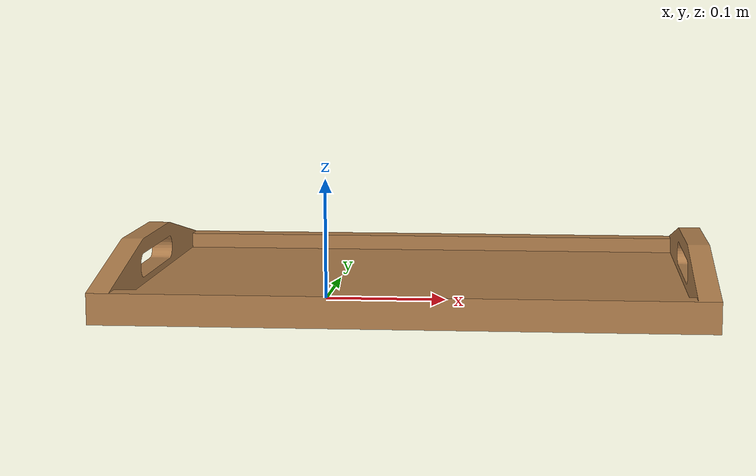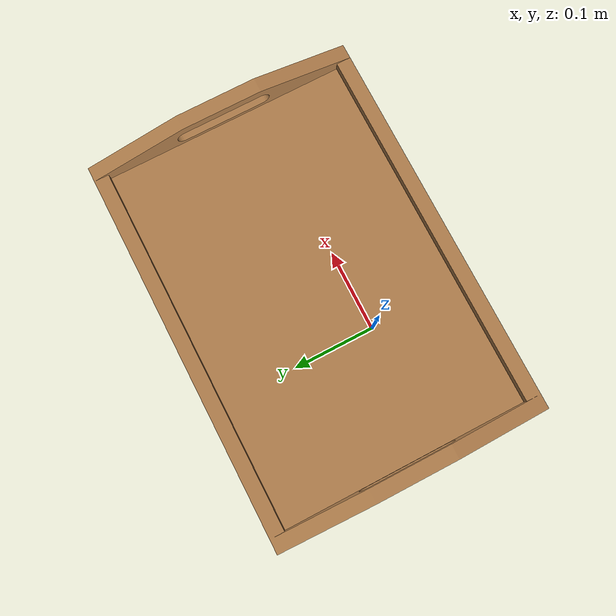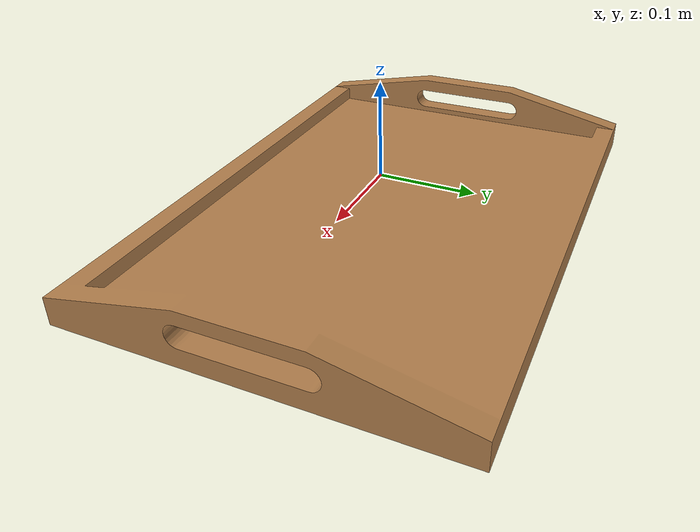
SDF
<?xml version='1.0'?>
<sdf version='1.6'>
  <model name='wood_tray'>
    <link name='link_13'>
        <visual name='visual'>
        <geometry>
          <mesh>
            <uri>model://wood_tray/meshes/model.dae</uri>
            <scale>1 1 1</scale>
          </mesh>
        </geometry>
        <material>
          <lighting>1</lighting>
          <script>
            <uri>file://media/materials/scripts/gazebo.material</uri>
            <name>Gazebo/Wood</name>
          </script>
        </material>
      </visual>
      <collision name='collision'>
        <laser_retro>0</laser_retro>
        <max_contacts>10</max_contacts>
        <pose frame=''>0 0 0 0 -0 0</pose>
        <geometry>
          <mesh>
            <uri>model://wood_tray/meshes/model.dae</uri>
            <scale>1 1 1</scale>
          </mesh>
        </geometry>
       </collision>
    </link>
    <static>1</static>
    <allow_auto_disable>1</allow_auto_disable>
  </model>
</sdf>
